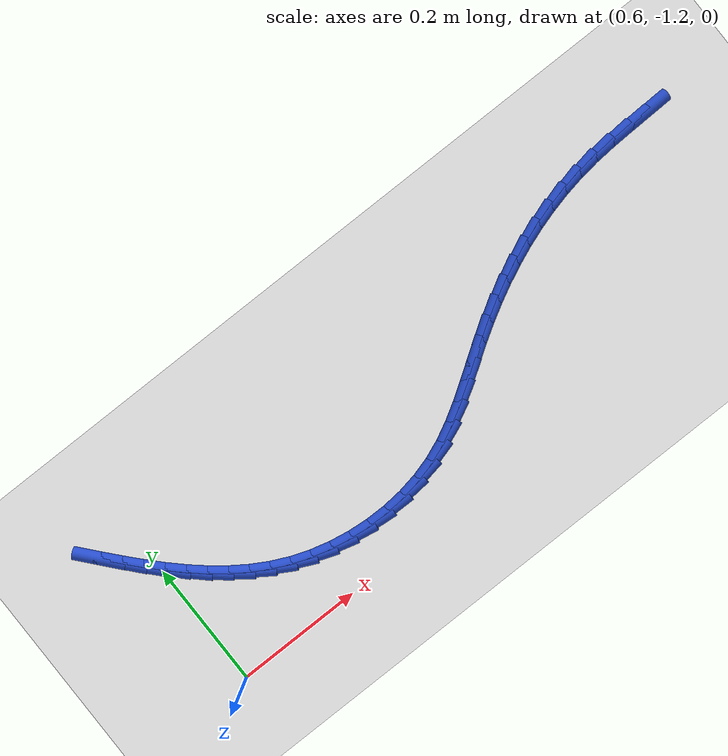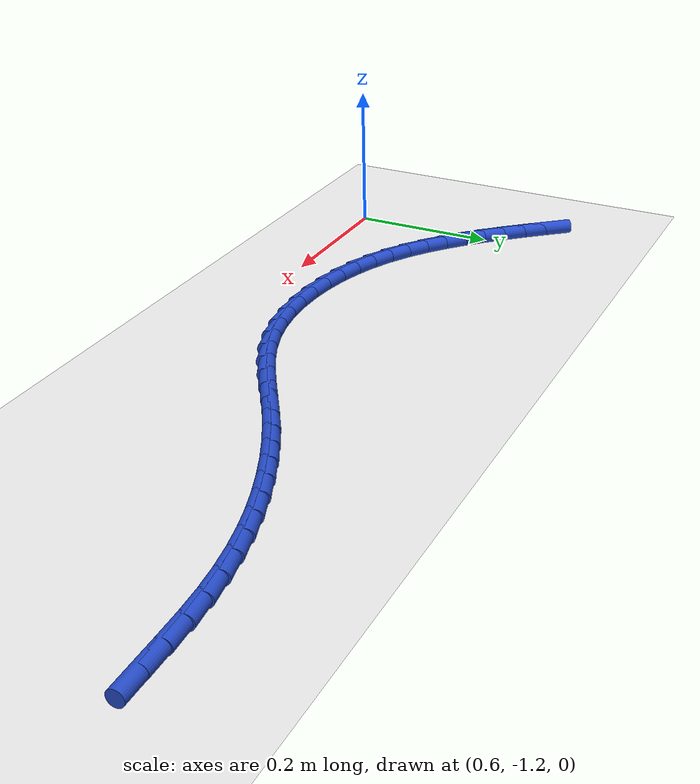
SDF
<sdf version="1.6">
 <world name="default">
  <model name="ground_plane">
   <static>1</static>
   <link name="link">
    <collision name="collision">
     <geometry><plane><normal>0 0 1</normal><size>100 100</size></plane></geometry>
     <surface><friction><ode><mu>100</mu><mu2>50</mu2></ode></friction></surface>
    </collision>
    <visual name="visual">
     <cast_shadows>0</cast_shadows>
     <geometry><plane><normal>0 0 1</normal><size>100 100</size></plane></geometry>
     <material>
      <script><uri>file://media/materials/scripts/gazebo.material</uri><name>Gazebo/WhiteGlow</name></script>
     </material>
    </visual>
   </link>
  </model>
  <model name="line">
   <link name="link_149">
    <pose>1.5761023159510972 -0.9111492113075208 0.01 0 1.57 0.028049787870611076</pose>
    <collision name="collision">
     <geometry><cylinder><radius>0.01</radius><length>0.08</length></cylinder></geometry>
    </collision>
    <visual name="visual">
     <material>
      <script><name>Gazebo/Blue</name><uri>file://media/materials/scripts/gazebo.material</uri></script>
     </material>
     <geometry><cylinder><radius>0.01</radius><length>0.08</length></cylinder></geometry>
    </visual>
   </link>
   <link name="link_150">
    <pose>1.5420799264005909 -0.9121037824796046 0.01 0 1.57 0.03720448489149264</pose>
    <collision name="collision">
     <geometry><cylinder><radius>0.01</radius><length>0.08</length></cylinder></geometry>
    </collision>
    <visual name="visual">
     <material>
      <script><name>Gazebo/Blue</name><uri>file://media/materials/scripts/gazebo.material</uri></script>
     </material>
     <geometry><cylinder><radius>0.01</radius><length>0.08</length></cylinder></geometry>
    </visual>
   </link>
   <link name="link_151">
    <pose>1.5079873323566706 -0.9133727654312667 0.01 0 1.57 0.07066949092795262</pose>
    <collision name="collision">
     <geometry><cylinder><radius>0.01</radius><length>0.08</length></cylinder></geometry>
    </collision>
    <visual name="visual">
     <material>
      <script><name>Gazebo/Blue</name><uri>file://media/materials/scripts/gazebo.material</uri></script>
     </material>
     <geometry><cylinder><radius>0.01</radius><length>0.08</length></cylinder></geometry>
    </visual>
   </link>
   <link name="link_152">
    <pose>1.4743047812195225 -0.9157570646995874 0.01 0 1.57 0.12434141330516543</pose>
    <collision name="collision">
     <geometry><cylinder><radius>0.01</radius><length>0.08</length></cylinder></geometry>
    </collision>
    <visual name="visual">
     <material>
      <script><name>Gazebo/Blue</name><uri>file://media/materials/scripts/gazebo.material</uri></script>
     </material>
     <geometry><cylinder><radius>0.01</radius><length>0.08</length></cylinder></geometry>
    </visual>
   </link>
   <link name="link_153">
    <pose>1.4414027184247171 -0.9198693687167999 0.01 0 1.57 0.1807300554842621</pose>
    <collision name="collision">
     <geometry><cylinder><radius>0.01</radius><length>0.08</length></cylinder></geometry>
    </collision>
    <visual name="visual">
     <material>
      <script><name>Gazebo/Blue</name><uri>file://media/materials/scripts/gazebo.material</uri></script>
     </material>
     <geometry><cylinder><radius>0.01</radius><length>0.08</length></cylinder></geometry>
    </visual>
   </link>
   <link name="link_154">
    <pose>1.4093082290486594 -0.9257337976724253 0.01 0 1.57 0.23577187015621862</pose>
    <collision name="collision">
     <geometry><cylinder><radius>0.01</radius><length>0.08</length></cylinder></geometry>
    </collision>
    <visual name="visual">
     <material>
      <script><name>Gazebo/Blue</name><uri>file://media/materials/scripts/gazebo.material</uri></script>
     </material>
     <geometry><cylinder><radius>0.01</radius><length>0.08</length></cylinder></geometry>
    </visual>
   </link>
   <link name="link_155">
    <pose>1.3779814648641513 -0.9332597386022307 0.01 0 1.57 0.28897161064227583</pose>
    <collision name="collision">
     <geometry><cylinder><radius>0.01</radius><length>0.08</length></cylinder></geometry>
    </collision>
    <visual name="visual">
     <material>
      <script><name>Gazebo/Blue</name><uri>file://media/materials/scripts/gazebo.material</uri></script>
     </material>
     <geometry><cylinder><radius>0.01</radius><length>0.08</length></cylinder></geometry>
    </visual>
   </link>
   <link name="link_156">
    <pose>1.3473825776439945 -0.9423565785419836 0.01 0 1.57 0.3398975491786158</pose>
    <collision name="collision">
     <geometry><cylinder><radius>0.01</radius><length>0.08</length></cylinder></geometry>
    </collision>
    <visual name="visual">
     <material>
      <script><name>Gazebo/Blue</name><uri>file://media/materials/scripts/gazebo.material</uri></script>
     </material>
     <geometry><cylinder><radius>0.01</radius><length>0.08</length></cylinder></geometry>
    </visual>
   </link>
   <link name="link_157">
    <pose>1.3174717191609915 -0.9529337045274506 0.01 0 1.57 0.3881929366871587</pose>
    <collision name="collision">
     <geometry><cylinder><radius>0.01</radius><length>0.08</length></cylinder></geometry>
    </collision>
    <visual name="visual">
     <material>
      <script><name>Gazebo/Blue</name><uri>file://media/materials/scripts/gazebo.material</uri></script>
     </material>
     <geometry><cylinder><radius>0.01</radius><length>0.08</length></cylinder></geometry>
    </visual>
   </link>
   <link name="link_158">
    <pose>1.2882090411879454 -0.9649005035943996 0.01 0 1.57 0.43358028845783947</pose>
    <collision name="collision">
     <geometry><cylinder><radius>0.01</radius><length>0.08</length></cylinder></geometry>
    </collision>
    <visual name="visual">
     <material>
      <script><name>Gazebo/Blue</name><uri>file://media/materials/scripts/gazebo.material</uri></script>
     </material>
     <geometry><cylinder><radius>0.01</radius><length>0.08</length></cylinder></geometry>
    </visual>
   </link>
   <link name="link_159">
    <pose>1.2595546954976569 -0.9781663627785973 0.01 0 1.57 0.4758593094739926</pose>
    <collision name="collision">
     <geometry><cylinder><radius>0.01</radius><length>0.08</length></cylinder></geometry>
    </collision>
    <visual name="visual">
     <material>
      <script><name>Gazebo/Blue</name><uri>file://media/materials/scripts/gazebo.material</uri></script>
     </material>
     <geometry><cylinder><radius>0.01</radius><length>0.08</length></cylinder></geometry>
    </visual>
   </link>
   <link name="link_160">
    <pose>1.231468833862928 -0.9926406691158116 0.01 0 1.57 0.5148999565734901</pose>
    <collision name="collision">
     <geometry><cylinder><radius>0.01</radius><length>0.08</length></cylinder></geometry>
    </collision>
    <visual name="visual">
     <material>
      <script><name>Gazebo/Blue</name><uri>file://media/materials/scripts/gazebo.material</uri></script>
     </material>
     <geometry><cylinder><radius>0.01</radius><length>0.08</length></cylinder></geometry>
    </visual>
   </link>
   <link name="link_161">
    <pose>1.2039116080565622 -1.008232809641809 0.01 0 1.57 0.5506323812224571</pose>
    <collision name="collision">
     <geometry><cylinder><radius>0.01</radius><length>0.08</length></cylinder></geometry>
    </collision>
    <visual name="visual">
     <material>
      <script><name>Gazebo/Blue</name><uri>file://media/materials/scripts/gazebo.material</uri></script>
     </material>
     <geometry><cylinder><radius>0.01</radius><length>0.08</length></cylinder></geometry>
    </visual>
   </link>
   <link name="link_162">
    <pose>1.1768431698513604 -1.0248521713923566 0.01 0 1.57 0.5797205606280238</pose>
    <collision name="collision">
     <geometry><cylinder><radius>0.01</radius><length>0.08</length></cylinder></geometry>
    </collision>
    <visual name="visual">
     <material>
      <script><name>Gazebo/Blue</name><uri>file://media/materials/scripts/gazebo.material</uri></script>
     </material>
     <geometry><cylinder><radius>0.01</radius><length>0.08</length></cylinder></geometry>
    </visual>
   </link>
   <link name="link_163">
    <pose>1.1501772551376128 -1.0423121892858023 0.01 0 1.57 0.588156267924472</pose>
    <collision name="collision">
     <geometry><cylinder><radius>0.01</radius><length>0.08</length></cylinder></geometry>
    </collision>
    <visual name="visual">
     <material>
      <script><name>Gazebo/Blue</name><uri>file://media/materials/scripts/gazebo.material</uri></script>
     </material>
     <geometry><cylinder><radius>0.01</radius><length>0.08</length></cylinder></geometry>
    </visual>
   </link>
   <link name="link_164">
    <pose>1.1236294285568058 -1.0600166334898744 0.01 0 1.57 0.5722869832526951</pose>
    <collision name="collision">
     <geometry><cylinder><radius>0.01</radius><length>0.08</length></cylinder></geometry>
    </collision>
    <visual name="visual">
     <material>
      <script><name>Gazebo/Blue</name><uri>file://media/materials/scripts/gazebo.material</uri></script>
     </material>
     <geometry><cylinder><radius>0.01</radius><length>0.08</length></cylinder></geometry>
    </visual>
   </link>
   <link name="link_165">
    <pose>1.0968623771933843 -1.0772599643135312 0.01 0 1.57 0.5318321940823835</pose>
    <collision name="collision">
     <geometry><cylinder><radius>0.01</radius><length>0.08</length></cylinder></geometry>
    </collision>
    <visual name="visual">
     <material>
      <script><name>Gazebo/Blue</name><uri>file://media/materials/scripts/gazebo.material</uri></script>
     </material>
     <geometry><cylinder><radius>0.01</radius><length>0.08</length></cylinder></geometry>
    </visual>
   </link>
   <link name="link_166">
    <pose>1.069538787623381 -1.0933366410147243 0.01 0 1.57 0.4663588735427054</pose>
    <collision name="collision">
     <geometry><cylinder><radius>0.01</radius><length>0.08</length></cylinder></geometry>
    </collision>
    <visual name="visual">
     <material>
      <script><name>Gazebo/Blue</name><uri>file://media/materials/scripts/gazebo.material</uri></script>
     </material>
     <geometry><cylinder><radius>0.01</radius><length>0.08</length></cylinder></geometry>
    </visual>
   </link>
   <link name="link_167">
    <pose>1.0413213464228268 -1.1075411228514072 0.01 0 1.57 0.3760849165735407</pose>
    <collision name="collision">
     <geometry><cylinder><radius>0.01</radius><length>0.08</length></cylinder></geometry>
    </collision>
    <visual name="visual">
     <material>
      <script><name>Gazebo/Blue</name><uri>file://media/materials/scripts/gazebo.material</uri></script>
     </material>
     <geometry><cylinder><radius>0.01</radius><length>0.08</length></cylinder></geometry>
    </visual>
   </link>
   <link name="link_168">
    <pose>1.0118740355443834 -1.1191692807208358 0.01 0 1.57 0.2717147301655813</pose>
    <collision name="collision">
     <geometry><cylinder><radius>0.01</radius><length>0.08</length></cylinder></geometry>
    </collision>
    <visual name="visual">
     <material>
      <script><name>Gazebo/Blue</name><uri>file://media/materials/scripts/gazebo.material</uri></script>
     </material>
     <geometry><cylinder><radius>0.01</radius><length>0.08</length></cylinder></geometry>
    </visual>
   </link>
   <link name="link_169">
    <pose>0.9810747650210913 -1.12775011407885 0.01 0 1.57 0.1727702025008244</pose>
    <collision name="collision">
     <geometry><cylinder><radius>0.01</radius><length>0.08</length></cylinder></geometry>
    </collision>
    <visual name="visual">
     <material>
      <script><name>Gazebo/Blue</name><uri>file://media/materials/scripts/gazebo.material</uri></script>
     </material>
     <geometry><cylinder><radius>0.01</radius><length>0.08</length></cylinder></geometry>
    </visual>
   </link>
   <link name="link_170">
    <pose>0.9492519126553932 -1.133303520544735 0.01 0 1.57 0.08016994680669282</pose>
    <collision name="collision">
     <geometry><cylinder><radius>0.01</radius><length>0.08</length></cylinder></geometry>
    </collision>
    <visual name="visual">
     <material>
      <script><name>Gazebo/Blue</name><uri>file://media/materials/scripts/gazebo.material</uri></script>
     </material>
     <geometry><cylinder><radius>0.01</radius><length>0.08</length></cylinder></geometry>
    </visual>
   </link>
   <link name="link_171">
    <pose>0.9167908544378849 -1.1359115116286826 0.01 0 1.57 -0.007807314058009239</pose>
    <collision name="collision">
     <geometry><cylinder><radius>0.01</radius><length>0.08</length></cylinder></geometry>
    </collision>
    <visual name="visual">
     <material>
      <script><name>Gazebo/Blue</name><uri>file://media/materials/scripts/gazebo.material</uri></script>
     </material>
     <geometry><cylinder><radius>0.01</radius><length>0.08</length></cylinder></geometry>
    </visual>
   </link>
   <link name="link_172">
    <pose>0.8840769663591612 -1.1356560988408824 0.01 0 1.57 -0.09293836352826539</pose>
    <collision name="collision">
     <geometry><cylinder><radius>0.01</radius><length>0.08</length></cylinder></geometry>
    </collision>
    <visual name="visual">
     <material>
      <script><name>Gazebo/Blue</name><uri>file://media/materials/scripts/gazebo.material</uri></script>
     </material>
     <geometry><cylinder><radius>0.01</radius><length>0.08</length></cylinder></geometry>
    </visual>
   </link>
   <link name="link_173">
    <pose>0.851495624409818 -1.1326192936915258 0.01 0 1.57 -0.17702847043303924</pose>
    <collision name="collision">
     <geometry><cylinder><radius>0.01</radius><length>0.08</length></cylinder></geometry>
    </collision>
    <visual name="visual">
     <material>
      <script><name>Gazebo/Blue</name><uri>file://media/materials/scripts/gazebo.material</uri></script>
     </material>
     <geometry><cylinder><radius>0.01</radius><length>0.08</length></cylinder></geometry>
    </visual>
   </link>
   <link name="link_174">
    <pose>0.8194322045804527 -1.1268831076908041 0.01 0 1.57 -0.26192591736122234</pose>
    <collision name="collision">
     <geometry><cylinder><radius>0.01</radius><length>0.08</length></cylinder></geometry>
    </collision>
    <visual name="visual">
     <material>
      <script><name>Gazebo/Blue</name><uri>file://media/materials/scripts/gazebo.material</uri></script>
     </material>
     <geometry><cylinder><radius>0.01</radius><length>0.08</length></cylinder></geometry>
    </visual>
   </link>
   <link name="link_175">
    <pose>0.7882720828616601 -1.1185295523489072 0.01 0 1.57 -0.3495538000293823</pose>
    <collision name="collision">
     <geometry><cylinder><radius>0.01</radius><length>0.08</length></cylinder></geometry>
    </collision>
    <visual name="visual">
     <material>
      <script><name>Gazebo/Blue</name><uri>file://media/materials/scripts/gazebo.material</uri></script>
     </material>
     <geometry><cylinder><radius>0.01</radius><length>0.08</length></cylinder></geometry>
    </visual>
   </link>
   <link name="link_176">
    <pose>0.7584005002242282 -1.107640675734301 0.01 0 1.57 -0.43925402227935595</pose>
    <collision name="collision">
     <geometry><cylinder><radius>0.01</radius><length>0.08</length></cylinder></geometry>
    </collision>
    <visual name="visual">
     <material>
      <script><name>Gazebo/Blue</name><uri>file://media/materials/scripts/gazebo.material</uri></script>
     </material>
     <geometry><cylinder><radius>0.01</radius><length>0.08</length></cylinder></geometry>
    </visual>
   </link>
   <link name="link_177">
    <pose>0.7300773162764176 -1.0943324744611143 0.01 0 1.57 -0.5235940876649012</pose>
    <collision name="collision">
     <geometry><cylinder><radius>0.01</radius><length>0.08</length></cylinder></geometry>
    </collision>
    <visual name="visual">
     <material>
      <script><name>Gazebo/Blue</name><uri>file://media/materials/scripts/gazebo.material</uri></script>
     </material>
     <geometry><cylinder><radius>0.01</radius><length>0.08</length></cylinder></geometry>
    </visual>
   </link>
   <link name="link_178">
    <pose>0.7032047755682975 -1.0788177738179254 0.01 0 1.57 -0.5997058997356136</pose>
    <collision name="collision">
     <geometry><cylinder><radius>0.01</radius><length>0.08</length></cylinder></geometry>
    </collision>
    <visual name="visual">
     <material>
      <script><name>Gazebo/Blue</name><uri>file://media/materials/scripts/gazebo.material</uri></script>
     </material>
     <geometry><cylinder><radius>0.01</radius><length>0.08</length></cylinder></geometry>
    </visual>
   </link>
   <link name="link_179">
    <pose>0.6776217818101697 -1.0613265494045543 0.01 0 1.57 -0.6665628374921407</pose>
    <collision name="collision">
     <geometry><cylinder><radius>0.01</radius><length>0.08</length></cylinder></geometry>
    </collision>
    <visual name="visual">
     <material>
      <script><name>Gazebo/Blue</name><uri>file://media/materials/scripts/gazebo.material</uri></script>
     </material>
     <geometry><cylinder><radius>0.01</radius><length>0.08</length></cylinder></geometry>
    </visual>
   </link>
   <link name="link_180">
    <pose>0.6531672387123353 -1.0420887768208227 0.01 0 1.57 -0.7237055545298913</pose>
    <collision name="collision">
     <geometry><cylinder><radius>0.01</radius><length>0.08</length></cylinder></geometry>
    </collision>
    <visual name="visual">
     <material>
      <script><name>Gazebo/Blue</name><uri>file://media/materials/scripts/gazebo.material</uri></script>
     </material>
     <geometry><cylinder><radius>0.01</radius><length>0.08</length></cylinder></geometry>
    </visual>
   </link>
   <link name="link_181">
    <pose>0.6296800499850947 -1.0213344316665498 0.01 0 1.57 -0.771088725984632</pose>
    <collision name="collision">
     <geometry><cylinder><radius>0.01</radius><length>0.08</length></cylinder></geometry>
    </collision>
    <visual name="visual">
     <material>
      <script><name>Gazebo/Blue</name><uri>file://media/materials/scripts/gazebo.material</uri></script>
     </material>
     <geometry><cylinder><radius>0.01</radius><length>0.08</length></cylinder></geometry>
    </visual>
   </link>
   <link name="link_182">
    <pose>0.6069991193387494 -0.9992934895415558 0.01 0 1.57 -0.8089195557588353</pose>
    <collision name="collision">
     <geometry><cylinder><radius>0.01</radius><length>0.08</length></cylinder></geometry>
    </collision>
    <visual name="visual">
     <material>
      <script><name>Gazebo/Blue</name><uri>file://media/materials/scripts/gazebo.material</uri></script>
     </material>
     <geometry><cylinder><radius>0.01</radius><length>0.08</length></cylinder></geometry>
    </visual>
   </link>
   <link name="link_183">
    <pose>0.584963350483601 -0.976195926045663 0.01 0 1.57 -0.8375215142342503</pose>
    <collision name="collision">
     <geometry><cylinder><radius>0.01</radius><length>0.08</length></cylinder></geometry>
    </collision>
    <visual name="visual">
     <material>
      <script><name>Gazebo/Blue</name><uri>file://media/materials/scripts/gazebo.material</uri></script>
     </material>
     <geometry><cylinder><radius>0.01</radius><length>0.08</length></cylinder></geometry>
    </visual>
   </link>
   <link name="link_184">
    <pose>0.5634116471299508 -0.9522717167786907 0.01 0 1.57 -0.8572344066100988</pose>
    <collision name="collision">
     <geometry><cylinder><radius>0.01</radius><length>0.08</length></cylinder></geometry>
    </collision>
    <visual name="visual">
     <material>
      <script><name>Gazebo/Blue</name><uri>file://media/materials/scripts/gazebo.material</uri></script>
     </material>
     <geometry><cylinder><radius>0.01</radius><length>0.08</length></cylinder></geometry>
    </visual>
   </link>
   <link name="link_185">
    <pose>0.5421829129880995 -0.9277508373404594 0.01 0 1.57 -0.8683487114768103</pose>
    <collision name="collision">
     <geometry><cylinder><radius>0.01</radius><length>0.08</length></cylinder></geometry>
    </collision>
    <visual name="visual">
     <material>
      <script><name>Gazebo/Blue</name><uri>file://media/materials/scripts/gazebo.material</uri></script>
     </material>
     <geometry><cylinder><radius>0.01</radius><length>0.08</length></cylinder></geometry>
    </visual>
   </link>
  </model>
 </world>
</sdf>
